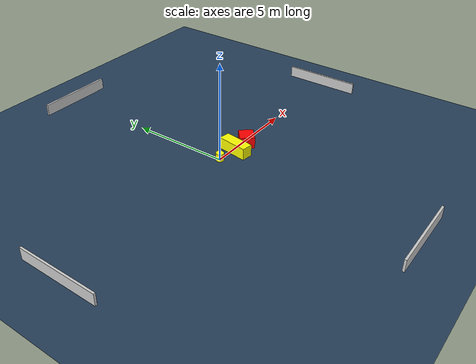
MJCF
<?xml version="1.0" ?>
<mujoco model="generated_environment">
  <option timestep="0.01" integrator="RK4" cone="elliptic"/>
  <default>
    <geom density="1"/>
  </default>
  <asset>
    <texture builtin="gradient" height="3072" name="skybox" rgb1="0.3 0.5 0.7" rgb2="0 0 0" type="skybox" width="512"/>
    <texture builtin="checker" height="300" name="groundplane" rgb1="0.2 0.3 0.4" rgb2="0.1 0.2 0.3" type="2d" width="300"/>
    <material name="groundplane" reflectance="0.2" texrepeat="5 5" texture="groundplane"/>
  </asset>
  <worldbody>
    <light dir="0 0 -1" directional="true" pos="0 0 1.5"/>
    <geom condim="3" friction="0.5 0.005 0.001" material="groundplane" name="floor" pos="0 0 0" size="0 0 0.05" type="plane"/>
    <body name="walls">
      <geom name="wall_1" condim="4" pos="-10.0 0.0 0.3" rgba="0.800000011920929 0.800000011920929 0.800000011920929 1.0" size="0.05 2.0 0.3" type="box"/>
      <geom name="wall_2" condim="4" pos="10.0 0.0 0.3" rgba="0.800000011920929 0.800000011920929 0.800000011920929 1.0" size="0.05 2.0 0.3" type="box"/>
      <geom name="wall_3" condim="4" pos="0.0 -10.0 0.3" rgba="0.800000011920929 0.800000011920929 0.800000011920929 1.0" size="2.0 0.05 0.3" type="box"/>
      <geom name="wall_4" condim="4" pos="0.0 10.0 0.3" rgba="0.800000011920929 0.800000011920929 0.800000011920929 1.0" size="2.0 0.05 0.3" type="box"/>
    </body>
    <body name="robot">
      <joint name="joint_x" type="slide" pos="0 0 0" axis="1 0 0"/>
      <joint name="joint_y" type="slide" pos="0 0 0" axis="0 1 0"/>
      <geom name="robot" type="cylinder" pos="0.0 0.0 0.2" size="0.2 0.2 0.0" mass="5.0" friction="1.0 0.005 0.0001" condim="4" rgba="1.0 1.0 0.0 1.0"/>
    </body>
    <body name="obstacle_1_movable">
      <geom name="obstacle_1_movable" condim="4" pos="1.0260650490071674 -0.17830401123069842 0.3" euler="0 0 351.7997252213255" friction="0.0 0.005 0.001" rgba="1.0 1.0 0.0 1.0" size="0.288912828466441 0.7724090253315425 0.3" type="box" mass="0.1"/>
      <joint type="free"/>
    </body>
    <body name="obstacle_2_static">
      <geom name="obstacle_2_static" condim="4" pos="1.8983152113059036 -0.21824401846604594 0.3" euler="0 0 310.8127787810442" friction="0.0 0.005 0.001" rgba="1.0 0.0 0.0 1.0" size="0.37453485516234386 0.40056841589672176 0.3" type="box"/>
    </body>
  </worldbody>
  <actuator>
    <motor name="actuator_x" joint="joint_x" gear="1" ctrlrange="-1 1"/>
    <motor name="actuator_y" joint="joint_y" gear="1" ctrlrange="-1 1"/>
  </actuator>
</mujoco>
